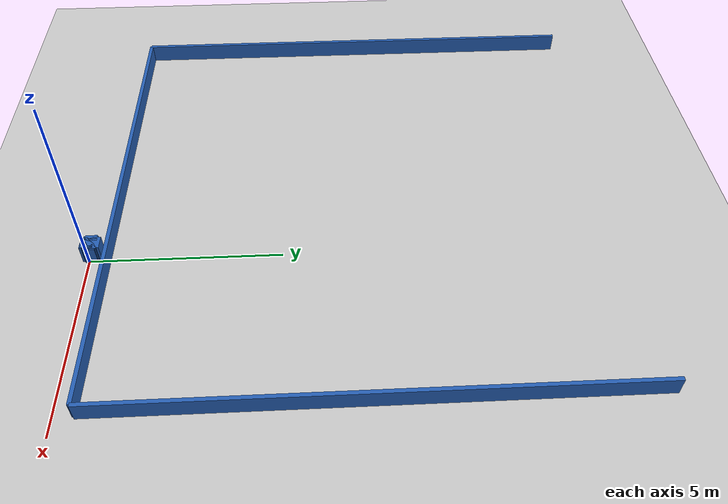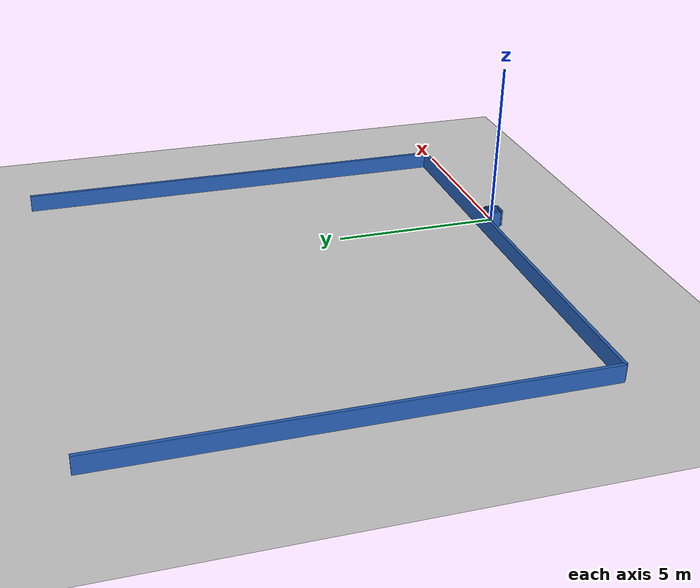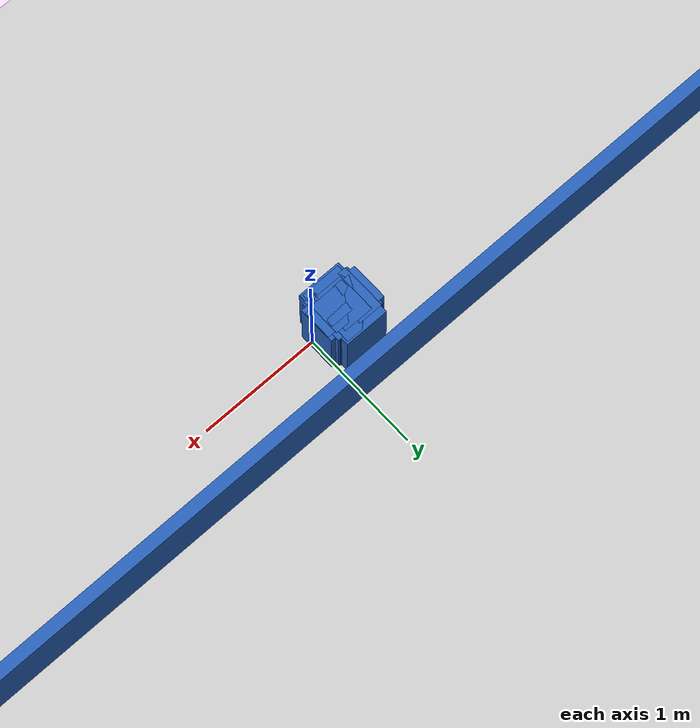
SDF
<?xml version="1.0" ?>
    <sdf version="1.5">
      <world name="default">
        <!-- A global light source -->
        <include>
          <uri>model://sun</uri>
        </include>
        <!-- A ground plane -->
        <include>
          <uri>model://ground_plane</uri>
        </include>

    <model name='libopen_space_final_T2B_105_38'>
      <static>1</static>
      <pose frame=''>-0.225000 0.075000 0.000000 0.000000 0.000000 0.000000</pose>
      <link name='link'>
        <inertial>
          <mass>1</mass>
          <inertia>
            <ixx>0.145833</ixx>
            <ixy>0</ixy>
            <ixz>0</ixz>
            <iyy>0.145833</iyy>
            <iyz>0</iyz>
            <izz>0.125</izz>
          </inertia>
        </inertial>
        <collision name='collision'>
          <geometry>
            <box>
              <size>0.25 0.33 1</size>
            </box>
          </geometry>
          <max_contacts>10</max_contacts>
          <surface>
            <contact>
              <ode/>
            </contact>
            <bounce/>
            <friction>
              <torsional>
                <ode/>
              </torsional>
              <ode/>
            </friction>
          </surface>
        </collision>
        <visual name='visual'>
          <geometry>
            <box>
              <size>0.25 0.33 1</size>
            </box>
          </geometry>
	    <material>
              <ambient>0.152000 0.379000 0.720000 1</ambient>
	      <diffuse>0.152000 0.379000 0.720000 1</diffuse>
          </material>
          <material>
            <script>
              <name>Gazebo/Grey</name>
              <uri>file://media/materials/scripts/gazebo.material</uri>
            </script>
          </material>
        </visual>
        <self_collide>0</self_collide>
        <kinematic>0</kinematic>
        <gravity>1</gravity>
      </link>
      <plugin name='libopen_space_final_T2B_105_38' filename='libopen_space_final_T2B_105_38.so'/>
    </model>

    <model name='libopen_space_final_T2B_81_68'>
      <static>1</static>
      <pose frame=''>-0.225000 0.075000 0.000000 0.000000 0.000000 0.000000</pose>
      <link name='link'>
        <inertial>
          <mass>1</mass>
          <inertia>
            <ixx>0.145833</ixx>
            <ixy>0</ixy>
            <ixz>0</ixz>
            <iyy>0.145833</iyy>
            <iyz>0</iyz>
            <izz>0.125</izz>
          </inertia>
        </inertial>
        <collision name='collision'>
          <geometry>
            <box>
              <size>0.26 0.24 1</size>
            </box>
          </geometry>
          <max_contacts>10</max_contacts>
          <surface>
            <contact>
              <ode/>
            </contact>
            <bounce/>
            <friction>
              <torsional>
                <ode/>
              </torsional>
              <ode/>
            </friction>
          </surface>
        </collision>
        <visual name='visual'>
          <geometry>
            <box>
              <size>0.26 0.24 1</size>
            </box>
          </geometry>
	    <material>
              <ambient>0.152000 0.379000 0.720000 1</ambient>
	      <diffuse>0.152000 0.379000 0.720000 1</diffuse>
          </material>
          <material>
            <script>
              <name>Gazebo/Grey</name>
              <uri>file://media/materials/scripts/gazebo.material</uri>
            </script>
          </material>
        </visual>
        <self_collide>0</self_collide>
        <kinematic>0</kinematic>
        <gravity>1</gravity>
      </link>
      <plugin name='libopen_space_final_T2B_81_68' filename='libopen_space_final_T2B_81_68.so'/>
    </model>

    <model name='libopen_space_final_T2B_111_91'>
      <static>1</static>
      <pose frame=''>-0.225000 0.075000 0.000000 0.000000 0.000000 0.000000</pose>
      <link name='link'>
        <inertial>
          <mass>1</mass>
          <inertia>
            <ixx>0.145833</ixx>
            <ixy>0</ixy>
            <ixz>0</ixz>
            <iyy>0.145833</iyy>
            <iyz>0</iyz>
            <izz>0.125</izz>
          </inertia>
        </inertial>
        <collision name='collision'>
          <geometry>
            <box>
              <size>0.23 0.28 1</size>
            </box>
          </geometry>
          <max_contacts>10</max_contacts>
          <surface>
            <contact>
              <ode/>
            </contact>
            <bounce/>
            <friction>
              <torsional>
                <ode/>
              </torsional>
              <ode/>
            </friction>
          </surface>
        </collision>
        <visual name='visual'>
          <geometry>
            <box>
              <size>0.23 0.28 1</size>
            </box>
          </geometry>
	    <material>
              <ambient>0.152000 0.379000 0.720000 1</ambient>
	      <diffuse>0.152000 0.379000 0.720000 1</diffuse>
          </material>
          <material>
            <script>
              <name>Gazebo/Grey</name>
              <uri>file://media/materials/scripts/gazebo.material</uri>
            </script>
          </material>
        </visual>
        <self_collide>0</self_collide>
        <kinematic>0</kinematic>
        <gravity>1</gravity>
      </link>
      <plugin name='libopen_space_final_T2B_111_91' filename='libopen_space_final_T2B_111_91.so'/>
    </model>

    <model name='libopen_space_final_T2B_81_4'>
      <static>1</static>
      <pose frame=''>-0.225000 0.075000 0.000000 0.000000 0.000000 0.000000</pose>
      <link name='link'>
        <inertial>
          <mass>1</mass>
          <inertia>
            <ixx>0.145833</ixx>
            <ixy>0</ixy>
            <ixz>0</ixz>
            <iyy>0.145833</iyy>
            <iyz>0</iyz>
            <izz>0.125</izz>
          </inertia>
        </inertial>
        <collision name='collision'>
          <geometry>
            <box>
              <size>0.49 0.24 1</size>
            </box>
          </geometry>
          <max_contacts>10</max_contacts>
          <surface>
            <contact>
              <ode/>
            </contact>
            <bounce/>
            <friction>
              <torsional>
                <ode/>
              </torsional>
              <ode/>
            </friction>
          </surface>
        </collision>
        <visual name='visual'>
          <geometry>
            <box>
              <size>0.49 0.24 1</size>
            </box>
          </geometry>
	    <material>
              <ambient>0.152000 0.379000 0.720000 1</ambient>
	      <diffuse>0.152000 0.379000 0.720000 1</diffuse>
          </material>
          <material>
            <script>
              <name>Gazebo/Grey</name>
              <uri>file://media/materials/scripts/gazebo.material</uri>
            </script>
          </material>
        </visual>
        <self_collide>0</self_collide>
        <kinematic>0</kinematic>
        <gravity>1</gravity>
      </link>
      <plugin name='libopen_space_final_T2B_81_4' filename='libopen_space_final_T2B_81_4.so'/>
    </model>

    <model name='libopen_space_final_T2B_91_29'>
      <static>1</static>
      <pose frame=''>-0.225000 0.075000 0.000000 0.000000 0.000000 0.000000</pose>
      <link name='link'>
        <inertial>
          <mass>1</mass>
          <inertia>
            <ixx>0.145833</ixx>
            <ixy>0</ixy>
            <ixz>0</ixz>
            <iyy>0.145833</iyy>
            <iyz>0</iyz>
            <izz>0.125</izz>
          </inertia>
        </inertial>
        <collision name='collision'>
          <geometry>
            <box>
              <size>0.33 0.47 1</size>
            </box>
          </geometry>
          <max_contacts>10</max_contacts>
          <surface>
            <contact>
              <ode/>
            </contact>
            <bounce/>
            <friction>
              <torsional>
                <ode/>
              </torsional>
              <ode/>
            </friction>
          </surface>
        </collision>
        <visual name='visual'>
          <geometry>
            <box>
              <size>0.33 0.47 1</size>
            </box>
          </geometry>
	    <material>
              <ambient>0.152000 0.379000 0.720000 1</ambient>
	      <diffuse>0.152000 0.379000 0.720000 1</diffuse>
          </material>
          <material>
            <script>
              <name>Gazebo/Grey</name>
              <uri>file://media/materials/scripts/gazebo.material</uri>
            </script>
          </material>
        </visual>
        <self_collide>0</self_collide>
        <kinematic>0</kinematic>
        <gravity>1</gravity>
      </link>
      <plugin name='libopen_space_final_T2B_91_29' filename='libopen_space_final_T2B_91_29.so'/>
    </model>

    <model name='libopen_space_final_T2B_83_66'>
      <static>1</static>
      <pose frame=''>-0.225000 0.075000 0.000000 0.000000 0.000000 0.000000</pose>
      <link name='link'>
        <inertial>
          <mass>1</mass>
          <inertia>
            <ixx>0.145833</ixx>
            <ixy>0</ixy>
            <ixz>0</ixz>
            <iyy>0.145833</iyy>
            <iyz>0</iyz>
            <izz>0.125</izz>
          </inertia>
        </inertial>
        <collision name='collision'>
          <geometry>
            <box>
              <size>0.42 0.37 1</size>
            </box>
          </geometry>
          <max_contacts>10</max_contacts>
          <surface>
            <contact>
              <ode/>
            </contact>
            <bounce/>
            <friction>
              <torsional>
                <ode/>
              </torsional>
              <ode/>
            </friction>
          </surface>
        </collision>
        <visual name='visual'>
          <geometry>
            <box>
              <size>0.42 0.37 1</size>
            </box>
          </geometry>
	    <material>
              <ambient>0.152000 0.379000 0.720000 1</ambient>
	      <diffuse>0.152000 0.379000 0.720000 1</diffuse>
          </material>
          <material>
            <script>
              <name>Gazebo/Grey</name>
              <uri>file://media/materials/scripts/gazebo.material</uri>
            </script>
          </material>
        </visual>
        <self_collide>0</self_collide>
        <kinematic>0</kinematic>
        <gravity>1</gravity>
      </link>
      <plugin name='libopen_space_final_T2B_83_66' filename='libopen_space_final_T2B_83_66.so'/>
    </model>

    <model name='libopen_space_final_T2B_90_76'>
      <static>1</static>
      <pose frame=''>-0.225000 0.075000 0.000000 0.000000 0.000000 0.000000</pose>
      <link name='link'>
        <inertial>
          <mass>1</mass>
          <inertia>
            <ixx>0.145833</ixx>
            <ixy>0</ixy>
            <ixz>0</ixz>
            <iyy>0.145833</iyy>
            <iyz>0</iyz>
            <izz>0.125</izz>
          </inertia>
        </inertial>
        <collision name='collision'>
          <geometry>
            <box>
              <size>0.34 0.16 1</size>
            </box>
          </geometry>
          <max_contacts>10</max_contacts>
          <surface>
            <contact>
              <ode/>
            </contact>
            <bounce/>
            <friction>
              <torsional>
                <ode/>
              </torsional>
              <ode/>
            </friction>
          </surface>
        </collision>
        <visual name='visual'>
          <geometry>
            <box>
              <size>0.34 0.16 1</size>
            </box>
          </geometry>
	    <material>
              <ambient>0.152000 0.379000 0.720000 1</ambient>
	      <diffuse>0.152000 0.379000 0.720000 1</diffuse>
          </material>
          <material>
            <script>
              <name>Gazebo/Grey</name>
              <uri>file://media/materials/scripts/gazebo.material</uri>
            </script>
          </material>
        </visual>
        <self_collide>0</self_collide>
        <kinematic>0</kinematic>
        <gravity>1</gravity>
      </link>
      <plugin name='libopen_space_final_T2B_90_76' filename='libopen_space_final_T2B_90_76.so'/>
    </model>

    <model name='libopen_space_final_T2B_116_74'>
      <static>1</static>
      <pose frame=''>-0.225000 0.075000 0.000000 0.000000 0.000000 0.000000</pose>
      <link name='link'>
        <inertial>
          <mass>1</mass>
          <inertia>
            <ixx>0.145833</ixx>
            <ixy>0</ixy>
            <ixz>0</ixz>
            <iyy>0.145833</iyy>
            <iyz>0</iyz>
            <izz>0.125</izz>
          </inertia>
        </inertial>
        <collision name='collision'>
          <geometry>
            <box>
              <size>0.29 0.29 1</size>
            </box>
          </geometry>
          <max_contacts>10</max_contacts>
          <surface>
            <contact>
              <ode/>
            </contact>
            <bounce/>
            <friction>
              <torsional>
                <ode/>
              </torsional>
              <ode/>
            </friction>
          </surface>
        </collision>
        <visual name='visual'>
          <geometry>
            <box>
              <size>0.29 0.29 1</size>
            </box>
          </geometry>
	    <material>
              <ambient>0.152000 0.379000 0.720000 1</ambient>
	      <diffuse>0.152000 0.379000 0.720000 1</diffuse>
          </material>
          <material>
            <script>
              <name>Gazebo/Grey</name>
              <uri>file://media/materials/scripts/gazebo.material</uri>
            </script>
          </material>
        </visual>
        <self_collide>0</self_collide>
        <kinematic>0</kinematic>
        <gravity>1</gravity>
      </link>
      <plugin name='libopen_space_final_T2B_116_74' filename='libopen_space_final_T2B_116_74.so'/>
    </model>

    <model name='libopen_space_final_T2B_112_54'>
      <static>1</static>
      <pose frame=''>-0.225000 0.075000 0.000000 0.000000 0.000000 0.000000</pose>
      <link name='link'>
        <inertial>
          <mass>1</mass>
          <inertia>
            <ixx>0.145833</ixx>
            <ixy>0</ixy>
            <ixz>0</ixz>
            <iyy>0.145833</iyy>
            <iyz>0</iyz>
            <izz>0.125</izz>
          </inertia>
        </inertial>
        <collision name='collision'>
          <geometry>
            <box>
              <size>0.37 0.50 1</size>
            </box>
          </geometry>
          <max_contacts>10</max_contacts>
          <surface>
            <contact>
              <ode/>
            </contact>
            <bounce/>
            <friction>
              <torsional>
                <ode/>
              </torsional>
              <ode/>
            </friction>
          </surface>
        </collision>
        <visual name='visual'>
          <geometry>
            <box>
              <size>0.37 0.50 1</size>
            </box>
          </geometry>
	    <material>
              <ambient>0.152000 0.379000 0.720000 1</ambient>
	      <diffuse>0.152000 0.379000 0.720000 1</diffuse>
          </material>
          <material>
            <script>
              <name>Gazebo/Grey</name>
              <uri>file://media/materials/scripts/gazebo.material</uri>
            </script>
          </material>
        </visual>
        <self_collide>0</self_collide>
        <kinematic>0</kinematic>
        <gravity>1</gravity>
      </link>
      <plugin name='libopen_space_final_T2B_112_54' filename='libopen_space_final_T2B_112_54.so'/>
    </model>

    <model name='libopen_space_final_T2B_129_21'>
      <static>1</static>
      <pose frame=''>-0.225000 0.075000 0.000000 0.000000 0.000000 0.000000</pose>
      <link name='link'>
        <inertial>
          <mass>1</mass>
          <inertia>
            <ixx>0.145833</ixx>
            <ixy>0</ixy>
            <ixz>0</ixz>
            <iyy>0.145833</iyy>
            <iyz>0</iyz>
            <izz>0.125</izz>
          </inertia>
        </inertial>
        <collision name='collision'>
          <geometry>
            <box>
              <size>0.36 0.27 1</size>
            </box>
          </geometry>
          <max_contacts>10</max_contacts>
          <surface>
            <contact>
              <ode/>
            </contact>
            <bounce/>
            <friction>
              <torsional>
                <ode/>
              </torsional>
              <ode/>
            </friction>
          </surface>
        </collision>
        <visual name='visual'>
          <geometry>
            <box>
              <size>0.36 0.27 1</size>
            </box>
          </geometry>
	    <material>
              <ambient>0.152000 0.379000 0.720000 1</ambient>
	      <diffuse>0.152000 0.379000 0.720000 1</diffuse>
          </material>
          <material>
            <script>
              <name>Gazebo/Grey</name>
              <uri>file://media/materials/scripts/gazebo.material</uri>
            </script>
          </material>
        </visual>
        <self_collide>0</self_collide>
        <kinematic>0</kinematic>
        <gravity>1</gravity>
      </link>
      <plugin name='libopen_space_final_T2B_129_21' filename='libopen_space_final_T2B_129_21.so'/>
    </model>

    <model name='libopen_space_final_T2B_134_32'>
      <static>1</static>
      <pose frame=''>-0.225000 0.075000 0.000000 0.000000 0.000000 0.000000</pose>
      <link name='link'>
        <inertial>
          <mass>1</mass>
          <inertia>
            <ixx>0.145833</ixx>
            <ixy>0</ixy>
            <ixz>0</ixz>
            <iyy>0.145833</iyy>
            <iyz>0</iyz>
            <izz>0.125</izz>
          </inertia>
        </inertial>
        <collision name='collision'>
          <geometry>
            <box>
              <size>0.50 0.31 1</size>
            </box>
          </geometry>
          <max_contacts>10</max_contacts>
          <surface>
            <contact>
              <ode/>
            </contact>
            <bounce/>
            <friction>
              <torsional>
                <ode/>
              </torsional>
              <ode/>
            </friction>
          </surface>
        </collision>
        <visual name='visual'>
          <geometry>
            <box>
              <size>0.50 0.31 1</size>
            </box>
          </geometry>
	    <material>
              <ambient>0.152000 0.379000 0.720000 1</ambient>
	      <diffuse>0.152000 0.379000 0.720000 1</diffuse>
          </material>
          <material>
            <script>
              <name>Gazebo/Grey</name>
              <uri>file://media/materials/scripts/gazebo.material</uri>
            </script>
          </material>
        </visual>
        <self_collide>0</self_collide>
        <kinematic>0</kinematic>
        <gravity>1</gravity>
      </link>
      <plugin name='libopen_space_final_T2B_134_32' filename='libopen_space_final_T2B_134_32.so'/>
    </model>

    <model name='libopen_space_final_T2B_147_27'>
      <static>1</static>
      <pose frame=''>-0.225000 0.075000 0.000000 0.000000 0.000000 0.000000</pose>
      <link name='link'>
        <inertial>
          <mass>1</mass>
          <inertia>
            <ixx>0.145833</ixx>
            <ixy>0</ixy>
            <ixz>0</ixz>
            <iyy>0.145833</iyy>
            <iyz>0</iyz>
            <izz>0.125</izz>
          </inertia>
        </inertial>
        <collision name='collision'>
          <geometry>
            <box>
              <size>0.39 0.38 1</size>
            </box>
          </geometry>
          <max_contacts>10</max_contacts>
          <surface>
            <contact>
              <ode/>
            </contact>
            <bounce/>
            <friction>
              <torsional>
                <ode/>
              </torsional>
              <ode/>
            </friction>
          </surface>
        </collision>
        <visual name='visual'>
          <geometry>
            <box>
              <size>0.39 0.38 1</size>
            </box>
          </geometry>
	    <material>
              <ambient>0.152000 0.379000 0.720000 1</ambient>
	      <diffuse>0.152000 0.379000 0.720000 1</diffuse>
          </material>
          <material>
            <script>
              <name>Gazebo/Grey</name>
              <uri>file://media/materials/scripts/gazebo.material</uri>
            </script>
          </material>
        </visual>
        <self_collide>0</self_collide>
        <kinematic>0</kinematic>
        <gravity>1</gravity>
      </link>
      <plugin name='libopen_space_final_T2B_147_27' filename='libopen_space_final_T2B_147_27.so'/>
    </model>

    <model name='libopen_space_final_T2B_73_9'>
      <static>1</static>
      <pose frame=''>-0.225000 0.075000 0.000000 0.000000 0.000000 0.000000</pose>
      <link name='link'>
        <inertial>
          <mass>1</mass>
          <inertia>
            <ixx>0.145833</ixx>
            <ixy>0</ixy>
            <ixz>0</ixz>
            <iyy>0.145833</iyy>
            <iyz>0</iyz>
            <izz>0.125</izz>
          </inertia>
        </inertial>
        <collision name='collision'>
          <geometry>
            <box>
              <size>0.21 0.38 1</size>
            </box>
          </geometry>
          <max_contacts>10</max_contacts>
          <surface>
            <contact>
              <ode/>
            </contact>
            <bounce/>
            <friction>
              <torsional>
                <ode/>
              </torsional>
              <ode/>
            </friction>
          </surface>
        </collision>
        <visual name='visual'>
          <geometry>
            <box>
              <size>0.21 0.38 1</size>
            </box>
          </geometry>
	    <material>
              <ambient>0.152000 0.379000 0.720000 1</ambient>
	      <diffuse>0.152000 0.379000 0.720000 1</diffuse>
          </material>
          <material>
            <script>
              <name>Gazebo/Grey</name>
              <uri>file://media/materials/scripts/gazebo.material</uri>
            </script>
          </material>
        </visual>
        <self_collide>0</self_collide>
        <kinematic>0</kinematic>
        <gravity>1</gravity>
      </link>
      <plugin name='libopen_space_final_T2B_73_9' filename='libopen_space_final_T2B_73_9.so'/>
    </model>

    <model name='libopen_space_final_T2B_99_64'>
      <static>1</static>
      <pose frame=''>-0.225000 0.075000 0.000000 0.000000 0.000000 0.000000</pose>
      <link name='link'>
        <inertial>
          <mass>1</mass>
          <inertia>
            <ixx>0.145833</ixx>
            <ixy>0</ixy>
            <ixz>0</ixz>
            <iyy>0.145833</iyy>
            <iyz>0</iyz>
            <izz>0.125</izz>
          </inertia>
        </inertial>
        <collision name='collision'>
          <geometry>
            <box>
              <size>0.20 0.31 1</size>
            </box>
          </geometry>
          <max_contacts>10</max_contacts>
          <surface>
            <contact>
              <ode/>
            </contact>
            <bounce/>
            <friction>
              <torsional>
                <ode/>
              </torsional>
              <ode/>
            </friction>
          </surface>
        </collision>
        <visual name='visual'>
          <geometry>
            <box>
              <size>0.20 0.31 1</size>
            </box>
          </geometry>
	    <material>
              <ambient>0.152000 0.379000 0.720000 1</ambient>
	      <diffuse>0.152000 0.379000 0.720000 1</diffuse>
          </material>
          <material>
            <script>
              <name>Gazebo/Grey</name>
              <uri>file://media/materials/scripts/gazebo.material</uri>
            </script>
          </material>
        </visual>
        <self_collide>0</self_collide>
        <kinematic>0</kinematic>
        <gravity>1</gravity>
      </link>
      <plugin name='libopen_space_final_T2B_99_64' filename='libopen_space_final_T2B_99_64.so'/>
    </model>

        <model name='bottom_wall'>
          <static>1</static>
          <pose frame=''>-2.25 0.5 0.000000 0.000000 0.000000 1.57079632</pose>
          <link name='link'>
            <inertial>
            <mass>1</mass>
            <inertia>
              <ixx>0.145833</ixx>
              <ixy>0</ixy>
              <ixz>0</ixz>
              <iyy>0.145833</iyy>
              <iyz>0</iyz>
              <izz>0.125</izz>
            </inertia>
            </inertial>
            <collision name='collision'>
            <geometry>
              <box>
              <size>0.1 13.5 1</size>
              </box>
            </geometry>
            <max_contacts>10</max_contacts>
            <surface>
              <contact>
              <ode/>
              </contact>
              <bounce/>
              <friction>
              <torsional>
                <ode/>
              </torsional>
              <ode/>
              </friction>
            </surface>
            </collision>
            <visual name='visual'>
            <geometry>
              <box>
              <size>0.1 13.5 1</size>
              </box>
            </geometry>
            <material>
              <ambient>0.152000 0.379000 0.720000 1</ambient>
            <diffuse>0.152000 0.379000 0.720000 1</diffuse>
            </material>
            <material>
              <script>
              <name>Gazebo/Grey</name>
              <uri>file://media/materials/scripts/gazebo.material</uri>
              </script>
            </material>
            </visual>
            <self_collide>0</self_collide>
            <kinematic>0</kinematic>
            <gravity>1</gravity>
          </link>
        </model>

        <model name='left_wall'>
          <static>1</static>
          <pose frame=''>-9 7.25 0.000000 0.000000 0.000000 0.000000</pose>
          <link name='link'>
            <inertial>
            <mass>1</mass>
            <inertia>
              <ixx>0.145833</ixx>
              <ixy>0</ixy>
              <ixz>0</ixz>
              <iyy>0.145833</iyy>
              <iyz>0</iyz>
              <izz>0.125</izz>
            </inertia>
            </inertial>
            <collision name='collision'>
            <geometry>
              <box>
              <size>0.1 13.5 1</size>
              </box>
            </geometry>
            <max_contacts>10</max_contacts>
            <surface>
              <contact>
              <ode/>
              </contact>
              <bounce/>
              <friction>
              <torsional>
                <ode/>
              </torsional>
              <ode/>
              </friction>
            </surface>
            </collision>
            <visual name='visual'>
            <geometry>
              <box>
              <size>0.1 13.5 1</size>
              </box>
            </geometry>
            <material>
              <ambient>0.152000 0.379000 0.720000 1</ambient>
            <diffuse>0.152000 0.379000 0.720000 1</diffuse>
            </material>
            <material>
              <script>
              <name>Gazebo/Grey</name>
              <uri>file://media/materials/scripts/gazebo.material</uri>
              </script>
            </material>
            </visual>
            <self_collide>0</self_collide>
            <kinematic>0</kinematic>
            <gravity>1</gravity>
          </link>
        </model>

        <model name='right_wall'>
          <static>1</static>
          <pose frame=''>4.5 7.25 0.000000 0.000000 0.000000 0.000000</pose>
          <link name='link'>
            <inertial>
            <mass>1</mass>
            <inertia>
              <ixx>0.145833</ixx>
              <ixy>0</ixy>
              <ixz>0</ixz>
              <iyy>0.145833</iyy>
              <iyz>0</iyz>
              <izz>0.125</izz>
            </inertia>
            </inertial>
            <collision name='collision'>
            <geometry>
              <box>
              <size>0.1 13.5 1</size>
              </box>
            </geometry>
            <max_contacts>10</max_contacts>
            <surface>
              <contact>
              <ode/>
              </contact>
              <bounce/>
              <friction>
              <torsional>
                <ode/>
              </torsional>
              <ode/>
              </friction>
            </surface>
            </collision>
            <visual name='visual'>
            <geometry>
              <box>
              <size>0.1 13.5 1</size>
              </box>
            </geometry>
            <material>
              <ambient>0.152000 0.379000 0.720000 1</ambient>
            <diffuse>0.152000 0.379000 0.720000 1</diffuse>
            </material>
            <material>
              <script>
              <name>Gazebo/Grey</name>
              <uri>file://media/materials/scripts/gazebo.material</uri>
              </script>
            </material>
            </visual>
            <self_collide>0</self_collide>
            <kinematic>0</kinematic>
            <gravity>1</gravity>
          </link>
        </model>

      </world>
    </sdf>"
